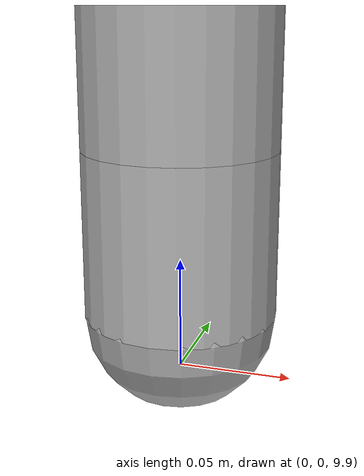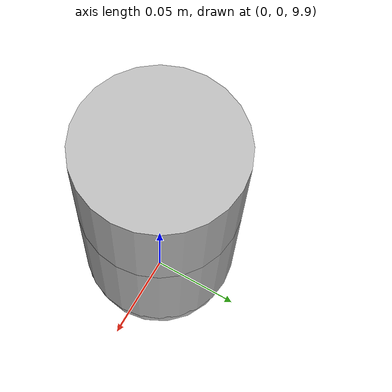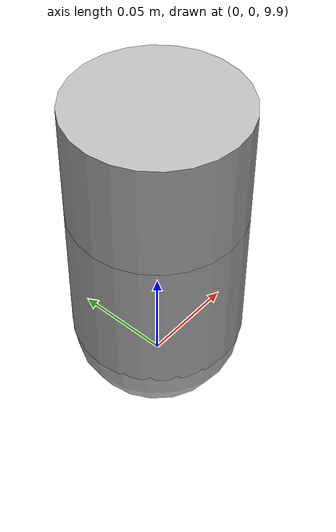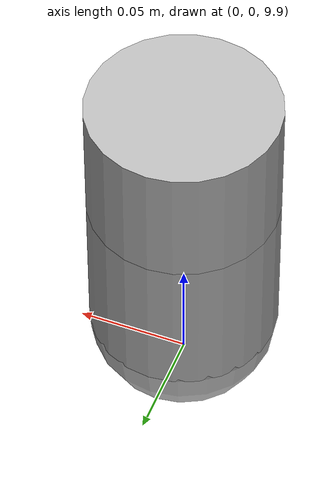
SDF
<?xml version="1.0" ?>
<sdf version="1.4">

  <world name="default">

    <include>
      <uri>model://ground_plane</uri>
    </include>

    <include>
      <uri>model://sun</uri>
    </include>
    <include>
    	<uri>model://mars</uri>
    </include>

	<model name="pan_tilt_camera">
	  <pose>0 0 10 0 0 0</pose>
	  <link name="base">
	    <!-- Offset the base by half the length of the cylinder -->
	    <pose>0 0 0.029335 0 0 0</pose>
	    <inertial>
	      <mass>1.2</mass>
	      <inertia>
			<ixx>0.001087473</ixx>
			<iyy>0.001087473</iyy>
			<izz>0.001092437</izz>
			<ixy>0</ixy>
			<ixz>0</ixz>
			<iyz>0</iyz>
	      </inertia>
	    </inertial>
	    <collision name="base_collision">
	      <geometry>
		<cylinder>
		  <!-- Radius and length provided by Velodyne -->
		  <radius>.04267</radius>
		  <length>.05867</length>
		</cylinder>
	      </geometry>
	    </collision>
	    <!-- The visual is mostly a copy of the collision -->
	    <visual name="base_visual">
	      <geometry>
		<cylinder>
		  <radius>.04267</radius>
		  <length>.05867</length>
		</cylinder>
	      </geometry>
	    </visual>
	  </link>

	  <!-- Give the base link a unique name -->
	  <link name="top">
	    <!-- Vertically offset the top cylinder by the length of the bottom
		cylinder and half the length of this cylinder. -->
	    <pose>0 0 -0.036785 0 0 0</pose>
		   <inertial>
		     <mass>0.1</mass>
		     <inertia>
		       <ixx>0.000090623</ixx>
		       <iyy>0.000090623</iyy>
		       <izz>0.000091036</izz>
		       <ixy>0</ixy>
		       <ixz>0</ixz>
		       <iyz>0</iyz>
		     </inertia>
		   </inertial>
	    <collision name="top_collision">
	      <geometry>
		<cylinder>
		  <!-- Radius and length provided by Velodyne -->
		  <radius>0.04267</radius>
		  <length>0.07357</length>
		</cylinder>
	      </geometry>
	    </collision>
	    <!-- The visual is mostly a copy of the collision -->
	    <visual name="top_visual">
	      <geometry>
		<cylinder>
		  <radius>0.04267</radius>
		  <length>0.07357</length>
		</cylinder>
	      </geometry>
	    </visual>
	  </link>

	  <link name="ball">
		  <pose>0 0 -0.07357 0 0 0</pose>
		  <sensor type="camera" name="camera1">
			<update_rate>30.0</update_rate>
		      <camera name="head">
				<horizontal_fov>0.698132</horizontal_fov>
				<image>
				  <width>800</width>
				  <height>800</height>
				  <format>R8G8B8</format>
				</image>
				<clip>
				  <near>0.02</near>
				  <far>300</far>
				</clip>
				<noise>
				  <type>gaussian</type>
				  <!-- Noise is sampled independently per pixel on each frame.
				       That pixel's noise value is added to each of its color
				       channels, which at that point lie in the range [0,1]. -->
				  <mean>0.0</mean>
				  <stddev>0.007</stddev>
				</noise>
		      </camera>
			  <plugin name="camera_controller" filename="libgazebo_ros_camera.so">
				<alwaysOn>true</alwaysOn>
				<updateRate>0.0</updateRate>
				<cameraName>gimbal/camera1</cameraName>
				<imageTopicName>image_raw</imageTopicName>
				<cameraInfoTopicName>camera_info</cameraInfoTopicName>
				<frameName>camera_link</frameName>
				<hackBaseline>0.07</hackBaseline>
				<distortionK1>0.0</distortionK1>
				<distortionK2>0.0</distortionK2>
				<distortionK3>0.0</distortionK3>
				<distortionT1>0.0</distortionT1>
				<distortionT2>0.0</distortionT2>
			   </plugin>
			   <visualize>true</visualize>
		  </sensor>
		   <inertial>
		     <mass>0.1</mass>
		     <inertia>
		       <ixx>0.000090623</ixx>
		       <iyy>0.000090623</iyy>
		       <izz>0.000091036</izz>
		       <ixy>0</ixy>
		       <ixz>0</ixz>
		       <iyz>0</iyz>
		     </inertia>
		   </inertial>
	    <collision name="ball_collision">
	      <geometry>
		<sphere>
		  <radius>0.04267</radius>
		</sphere>
	      </geometry>
	    </collision>
	    <!-- The visual is mostly a copy of the collision -->
	    <visual name="ball_visual">
	      <geometry>
		<sphere>
		  <radius>0.04267</radius>
		</sphere>
	      </geometry>
	    </visual>
	  </link>

	<!-- Each joint must have a unique name -->

	<joint type="revolute" name="joint">
	  <!-- Position the joint at the bottom of the top link -->
	  <pose>0 0 -0.036785 0 0 0</pose>
	  <!-- Use the base link as the parent of the joint -->
	  <parent>base</parent>
	  <!-- Use the top link as the child of the joint -->
	  <child>top</child>
	  <!-- The axis defines the joint's degree of freedom -->
	  <axis>
	    <!-- Revolve around the z-axis -->
	    <xyz>0 0 1</xyz>
	    <!-- Limit refers to the range of motion of the joint -->
	    <limit>
	      <!-- Use a very large number to indicate a continuous revolution -->
	      <lower>-10000000000000000</lower>
	      <upper>10000000000000000</upper>
	    </limit>
	  </axis>
	</joint>

	<joint type="revolute" name="ball_joint">
	  <!-- Position the joint at the bottom of the top link -->
	  <pose>0 0 0 0 0 0</pose>
	  <!-- Use the base link as the parent of the joint -->
	  <parent>top</parent>
	  <!-- Use the top link as the child of the joint -->
	  <child>ball</child>
	  <!-- The axis defines the joint's degree of freedom -->
	  <axis>
	    <!-- Revolve around the y-axis -->
	    <xyz>0 1 0</xyz>
	    <!-- Limit refers to the range of motion of the joint -->
	    <limit>
	      <!-- Use a very large number to indicate a continuous revolution -->
	      <lower>-10000000000000000</lower>
	      <upper>10000000000000000</upper>
	    </limit>
	  </axis>
	</joint>

	<joint name="fixed to ground" type="revolute">
	  <parent>world</parent>
	  <child>base</child>
	  <axis>
        <limit>
          <lower>0</lower>
          <upper>0</upper>
        </limit>
        <xyz>0 0 1</xyz>
        </axis>
	</joint>
      <!-- Attach the plugin to this model -->
    <plugin name="gimbal_control" filename="libgimbal_tracking.so"/>
	</model>
  </world>
</sdf>

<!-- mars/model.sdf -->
<sdf version="1.4">
<model name="mars">
  <static>true</static>
    <link name="link">
      <collision name="collision">
        <geometry>
          <plane>
            <normal>0 0 1</normal>
            <size>10 10</size>
          </plane>
        </geometry>
        <surface>
          <friction>
            <ode>
              <mu>100</mu>
              <mu2>50</mu2>
            </ode>
          </friction>
        </surface>
      </collision>
      <visual name="visual">
        <cast_shadows>false</cast_shadows>
        <geometry>
          <plane>
            <normal>0 0 1</normal>
            <size>100 100</size>
          </plane>
        </geometry>
        <material>
          <script>
            <uri>model://mars/materials/scripts/mars.material</uri>
            <name>mars</name>
          </script>
        </material>
      </visual>
    </link>
  </model>
</sdf>
